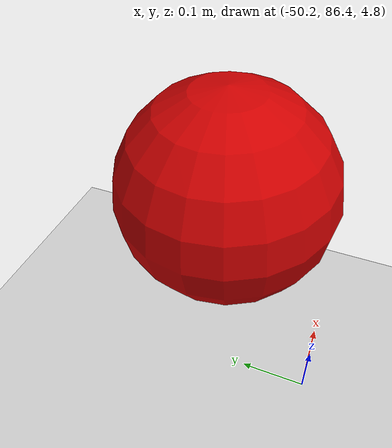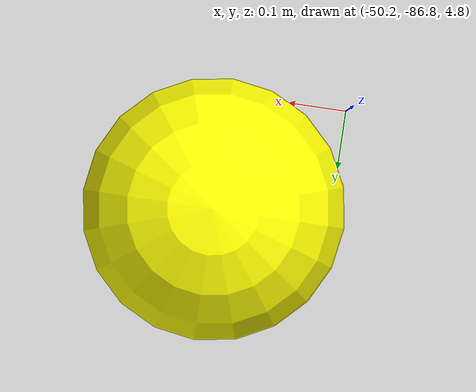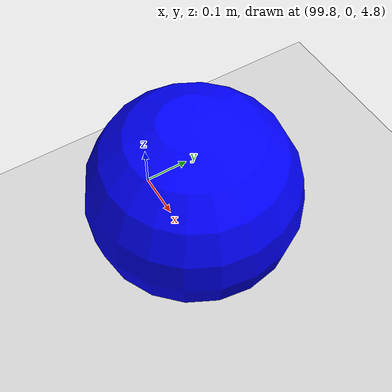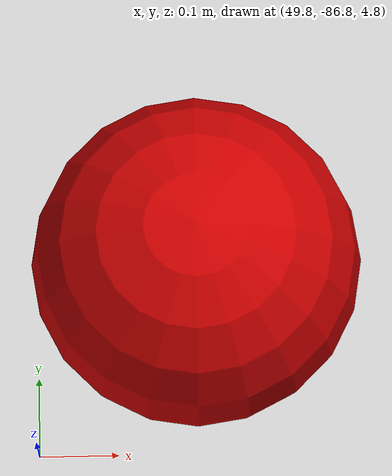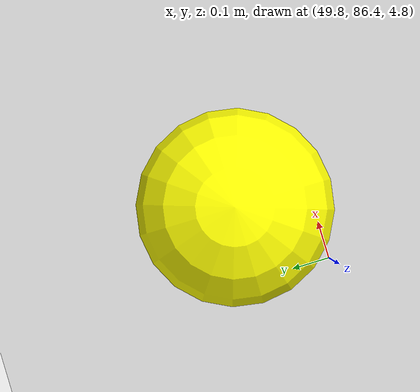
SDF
<sdf version="1.5">
 <world name="default">
  <physics type="ode">
   <ode>
    <solver><type>quick</type><iters>100</iters><sor>1.0</sor></solver>
    <constraints>
     <cfm>0.0</cfm>
     <erp>0.9</erp>
     <contact_max_correcting_vel>0.1</contact_max_correcting_vel>
     <contact_surface_layer>0.0</contact_surface_layer>
    </constraints>
   </ode>
   <real_time_update_rate>-1</real_time_update_rate>
  </physics>
  <model name="ground_plane">
   <static>true</static>
   <link name="link">
    <collision name="collision">
     <geometry><plane><normal>0 0 1</normal><size>5000 5000</size></plane></geometry>
     <surface><friction><ode><mu>1</mu><mu2>1</mu2></ode></friction></surface>
    </collision>
    <visual name="runway1">
     <pose>000 0 0.005 0 0 0</pose>
     <cast_shadows>false</cast_shadows>
     <geometry><plane><normal>0 0 1</normal><size>1829 45</size></plane></geometry>
     <material>
      <script><uri>file://media/materials/scripts/gazebo.material</uri><name>Gazebo/Runway</name></script>
     </material>
    </visual>
    <visual name="runway2">
     <pose>0 50 0.005 0 0 0</pose>
     <cast_shadows>false</cast_shadows>
     <geometry><plane><normal>0 0 1</normal><size>1829 45</size></plane></geometry>
     <material>
      <script><uri>file://media/materials/scripts/gazebo.material</uri><name>Gazebo/Runway</name></script>
     </material>
    </visual>
    <visual name="runway3">
     <pose>0 100 0.005 0 0 0</pose>
     <cast_shadows>false</cast_shadows>
     <geometry><plane><normal>0 0 1</normal><size>1829 45</size></plane></geometry>
     <material>
      <script><uri>file://media/materials/scripts/gazebo.material</uri><name>Gazebo/Runway</name></script>
     </material>
    </visual>
    <visual name="grass">
     <pose>0 0 -0.1 0 0 0</pose>
     <cast_shadows>false</cast_shadows>
     <geometry><plane><normal>0 0 1</normal><size>5000 5000</size></plane></geometry>
     <material>
      <script><uri>file://media/materials/scripts/gazebo.material</uri><name>Gazebo/Grass</name></script>
     </material>
    </visual>
   </link>
  </model>
  <include><uri>model://sun</uri></include>
  <model name="origin.origin">
   <link name="link">
    <inertial>
     <inertia><ixx>0.1</ixx><ixy>0</ixy><ixz>0</ixz><iyy>0.1</iyy><iyz>0</iyz><izz>0.1</izz></inertia>
     <mass>1</mass>
    </inertial>
    <gravity>0</gravity>
    <visual name="visual">
     <geometry><sphere><radius>0.2</radius></sphere></geometry>
     <material>
      <script><name>Gazebo/Grey</name><uri>file://media/materials/scripts/gazebo.material</uri></script>
      <shader type="pixel"><normal_map>__default__</normal_map></shader>
      <ambient>0.3 0.3 0.3 1</ambient>
      <diffuse>1.0 1.0 1.0 1</diffuse>
      <specular>0.01 0.01 0.01 1</specular>
      <emissive>0 0 0 1</emissive>
     </material>
     <transparency>0.05</transparency>
    </visual>
   </link>
   <static>0</static>
  </model>
  <model name="traj_1.0">
   <pose>100.0 0.0 5 0 0 0</pose>
   <link name="link">
    <inertial>
     <inertia><ixx>0.1</ixx><ixy>0</ixy><ixz>0</ixz><iyy>0.1</iyy><iyz>0</iyz><izz>0.1</izz></inertia>
     <mass>1</mass>
    </inertial>
    <gravity>0</gravity>
    <visual name="visual">
     <geometry><sphere><radius>0.2</radius></sphere></geometry>
     <material>
      <script><name>Gazebo/Grey</name><uri>file://media/materials/scripts/gazebo.material</uri></script>
      <shader type="pixel"><normal_map>__default__</normal_map></shader>
      <ambient>0.3 0.3 0.3 1</ambient>
      <diffuse>0.0 0.0 1.0 1</diffuse>
      <specular>0.01 0.01 0.01 1</specular>
      <emissive>0 0 0 1</emissive>
     </material>
     <transparency>0.05</transparency>
    </visual>
   </link>
   <static>0</static>
  </model>
  <model name="traj_1.0">
   <pose>100.0 0.0 5 0 0 0</pose>
   <link name="link">
    <inertial>
     <inertia><ixx>0.1</ixx><ixy>0</ixy><ixz>0</ixz><iyy>0.1</iyy><iyz>0</iyz><izz>0.1</izz></inertia>
     <mass>1</mass>
    </inertial>
    <gravity>0</gravity>
    <visual name="visual">
     <geometry><sphere><radius>0.2</radius></sphere></geometry>
     <material>
      <script><name>Gazebo/Grey</name><uri>file://media/materials/scripts/gazebo.material</uri></script>
      <shader type="pixel"><normal_map>__default__</normal_map></shader>
      <ambient>0.3 0.3 0.3 1</ambient>
      <diffuse>0.0 0.0 1.0 1</diffuse>
      <specular>0.01 0.01 0.01 1</specular>
      <emissive>0 0 0 1</emissive>
     </material>
     <transparency>0.05</transparency>
    </visual>
   </link>
   <static>0</static>
  </model>
  <model name="traj_1.1">
   <pose>100.0 -200.0 5 0 0 0</pose>
   <link name="link">
    <inertial>
     <inertia><ixx>0.1</ixx><ixy>0</ixy><ixz>0</ixz><iyy>0.1</iyy><iyz>0</iyz><izz>0.1</izz></inertia>
     <mass>1</mass>
    </inertial>
    <gravity>0</gravity>
    <visual name="visual">
     <geometry><sphere><radius>0.2</radius></sphere></geometry>
     <material>
      <script><name>Gazebo/Grey</name><uri>file://media/materials/scripts/gazebo.material</uri></script>
      <shader type="pixel"><normal_map>__default__</normal_map></shader>
      <ambient>0.3 0.3 0.3 1</ambient>
      <diffuse>0.0 0.0 1.0 1</diffuse>
      <specular>0.01 0.01 0.01 1</specular>
      <emissive>0 0 0 1</emissive>
     </material>
     <transparency>0.05</transparency>
    </visual>
   </link>
   <static>0</static>
  </model>
  <model name="traj_2.0">
   <pose>-50.0 86.6 5 0 0 0</pose>
   <link name="link">
    <inertial>
     <inertia><ixx>0.1</ixx><ixy>0</ixy><ixz>0</ixz><iyy>0.1</iyy><iyz>0</iyz><izz>0.1</izz></inertia>
     <mass>1</mass>
    </inertial>
    <gravity>0</gravity>
    <visual name="visual">
     <geometry><sphere><radius>0.2</radius></sphere></geometry>
     <material>
      <script><name>Gazebo/Grey</name><uri>file://media/materials/scripts/gazebo.material</uri></script>
      <shader type="pixel"><normal_map>__default__</normal_map></shader>
      <ambient>0.3 0.3 0.3 1</ambient>
      <diffuse>0.8 0.0 0.0 1</diffuse>
      <specular>0.01 0.01 0.01 1</specular>
      <emissive>0 0 0 1</emissive>
     </material>
     <transparency>0.05</transparency>
    </visual>
   </link>
   <static>0</static>
  </model>
  <model name="traj_2.0">
   <pose>-50.0 86.6 5 0 0 0</pose>
   <link name="link">
    <inertial>
     <inertia><ixx>0.1</ixx><ixy>0</ixy><ixz>0</ixz><iyy>0.1</iyy><iyz>0</iyz><izz>0.1</izz></inertia>
     <mass>1</mass>
    </inertial>
    <gravity>0</gravity>
    <visual name="visual">
     <geometry><sphere><radius>0.2</radius></sphere></geometry>
     <material>
      <script><name>Gazebo/Grey</name><uri>file://media/materials/scripts/gazebo.material</uri></script>
      <shader type="pixel"><normal_map>__default__</normal_map></shader>
      <ambient>0.3 0.3 0.3 1</ambient>
      <diffuse>0.8 0.0 0.0 1</diffuse>
      <specular>0.01 0.01 0.01 1</specular>
      <emissive>0 0 0 1</emissive>
     </material>
     <transparency>0.05</transparency>
    </visual>
   </link>
   <static>0</static>
  </model>
  <model name="traj_2.1">
   <pose>50.0 -86.6 5 0 0 0</pose>
   <link name="link">
    <inertial>
     <inertia><ixx>0.1</ixx><ixy>0</ixy><ixz>0</ixz><iyy>0.1</iyy><iyz>0</iyz><izz>0.1</izz></inertia>
     <mass>1</mass>
    </inertial>
    <gravity>0</gravity>
    <visual name="visual">
     <geometry><sphere><radius>0.2</radius></sphere></geometry>
     <material>
      <script><name>Gazebo/Grey</name><uri>file://media/materials/scripts/gazebo.material</uri></script>
      <shader type="pixel"><normal_map>__default__</normal_map></shader>
      <ambient>0.3 0.3 0.3 1</ambient>
      <diffuse>0.8 0.0 0.0 1</diffuse>
      <specular>0.01 0.01 0.01 1</specular>
      <emissive>0 0 0 1</emissive>
     </material>
     <transparency>0.05</transparency>
    </visual>
   </link>
   <static>0</static>
  </model>
  <model name="traj_3.0">
   <pose>-50.0 -86.6 5 0 0 0</pose>
   <link name="link">
    <inertial>
     <inertia><ixx>0.1</ixx><ixy>0</ixy><ixz>0</ixz><iyy>0.1</iyy><iyz>0</iyz><izz>0.1</izz></inertia>
     <mass>1</mass>
    </inertial>
    <gravity>0</gravity>
    <visual name="visual">
     <geometry><sphere><radius>0.2</radius></sphere></geometry>
     <material>
      <script><name>Gazebo/Grey</name><uri>file://media/materials/scripts/gazebo.material</uri></script>
      <shader type="pixel"><normal_map>__default__</normal_map></shader>
      <ambient>0.3 0.3 0.3 1</ambient>
      <diffuse>1.0 1.0 0.0 1</diffuse>
      <specular>0.01 0.01 0.01 1</specular>
      <emissive>0 0 0 1</emissive>
     </material>
     <transparency>0.05</transparency>
    </visual>
   </link>
   <static>0</static>
  </model>
  <model name="traj_3.0">
   <pose>-50.0 -86.6 5 0 0 0</pose>
   <link name="link">
    <inertial>
     <inertia><ixx>0.1</ixx><ixy>0</ixy><ixz>0</ixz><iyy>0.1</iyy><iyz>0</iyz><izz>0.1</izz></inertia>
     <mass>1</mass>
    </inertial>
    <gravity>0</gravity>
    <visual name="visual">
     <geometry><sphere><radius>0.2</radius></sphere></geometry>
     <material>
      <script><name>Gazebo/Grey</name><uri>file://media/materials/scripts/gazebo.material</uri></script>
      <shader type="pixel"><normal_map>__default__</normal_map></shader>
      <ambient>0.3 0.3 0.3 1</ambient>
      <diffuse>1.0 1.0 0.0 1</diffuse>
      <specular>0.01 0.01 0.01 1</specular>
      <emissive>0 0 0 1</emissive>
     </material>
     <transparency>0.05</transparency>
    </visual>
   </link>
   <static>0</static>
  </model>
  <model name="traj_3.1">
   <pose>50.0 86.6 5 0 0 0</pose>
   <link name="link">
    <inertial>
     <inertia><ixx>0.1</ixx><ixy>0</ixy><ixz>0</ixz><iyy>0.1</iyy><iyz>0</iyz><izz>0.1</izz></inertia>
     <mass>1</mass>
    </inertial>
    <gravity>0</gravity>
    <visual name="visual">
     <geometry><sphere><radius>0.2</radius></sphere></geometry>
     <material>
      <script><name>Gazebo/Grey</name><uri>file://media/materials/scripts/gazebo.material</uri></script>
      <shader type="pixel"><normal_map>__default__</normal_map></shader>
      <ambient>0.3 0.3 0.3 1</ambient>
      <diffuse>1.0 1.0 0.0 1</diffuse>
      <specular>0.01 0.01 0.01 1</specular>
      <emissive>0 0 0 1</emissive>
     </material>
     <transparency>0.05</transparency>
    </visual>
   </link>
   <static>0</static>
  </model>
 </world>
</sdf>
